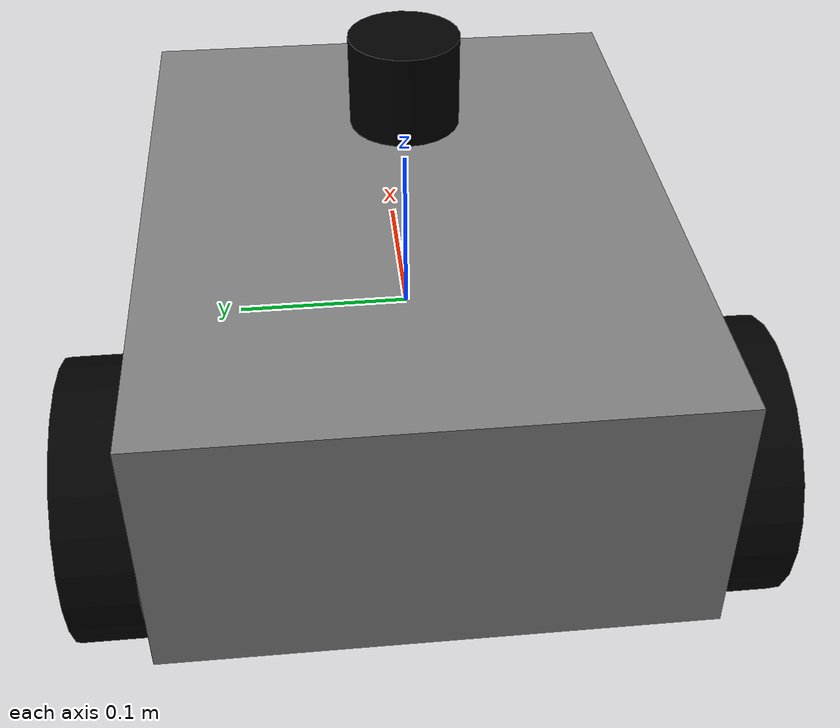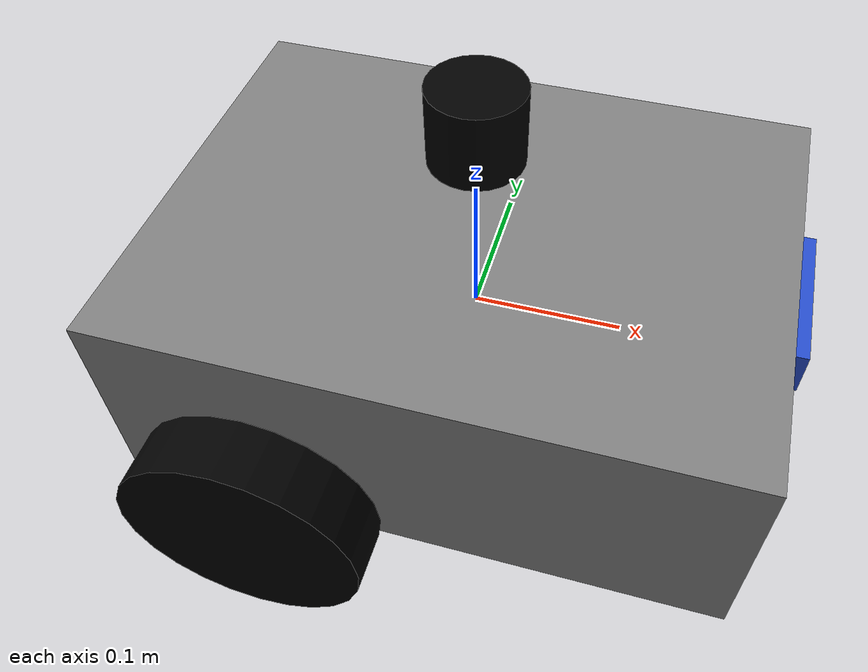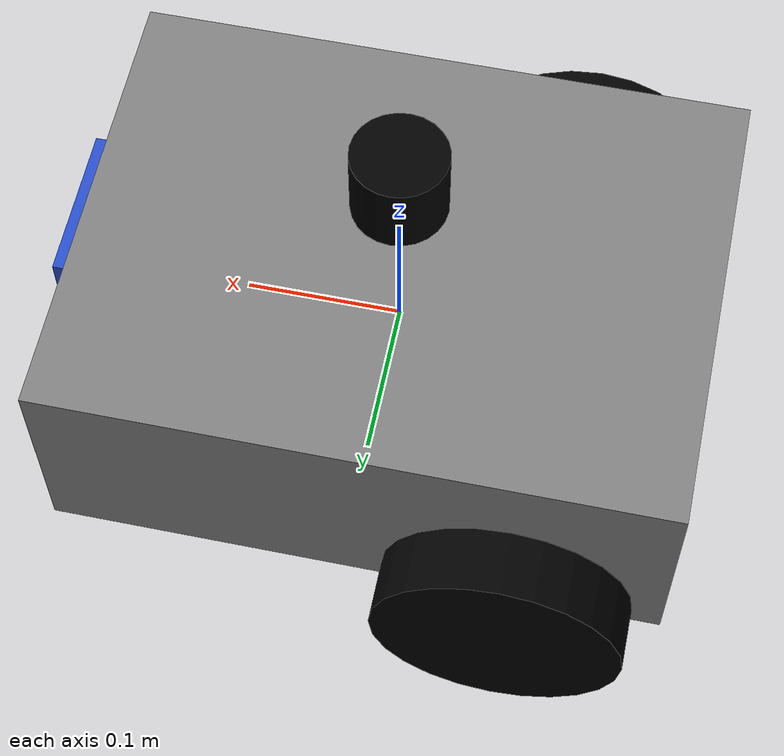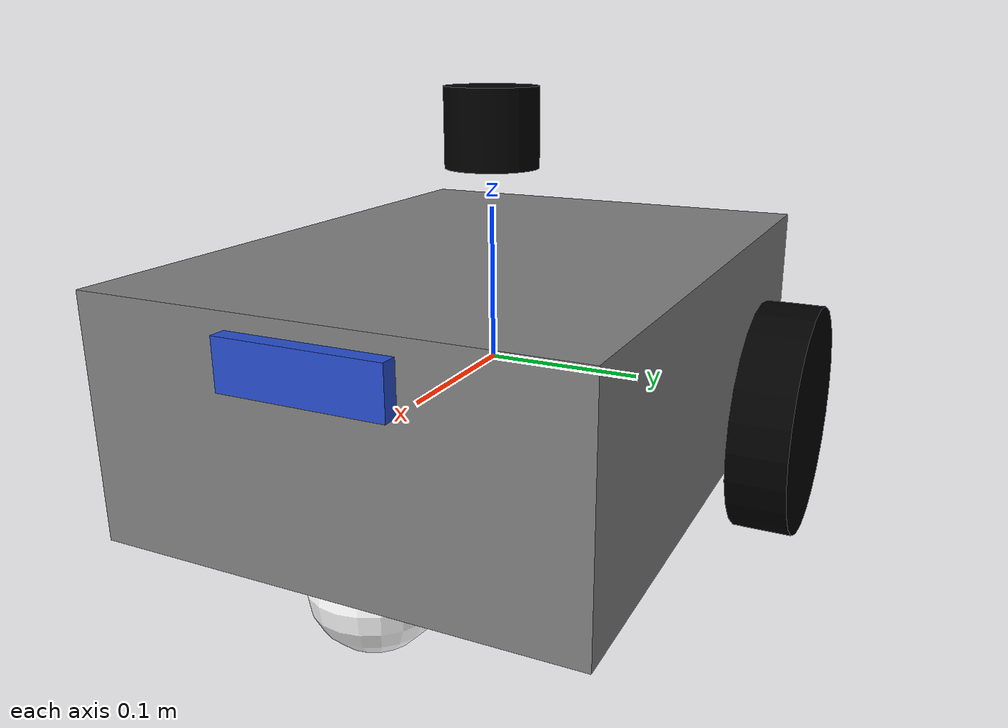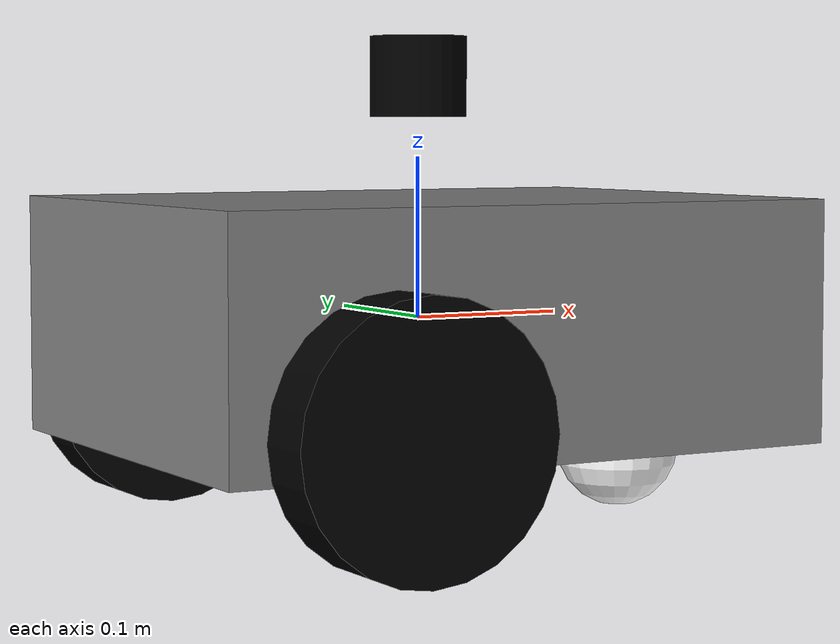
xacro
<?xml version="1.0"?>
<robot name="sensor_car" xmlns:xacro="http://www.ros.org/wiki/xacro">

  <link name="base_link">
    <visual>
      <geometry><box size="0.4 0.3 0.15"/></geometry>
      <material name="gray"><color rgba="0.5 0.5 0.5 1.0"/></material>
    </visual>
    <collision>
      <geometry><box size="0.4 0.3 0.15"/></geometry>
    </collision>
    <inertial>
      <mass value="5.0"/>
      <origin xyz="0 0 0" rpy="0 0 0"/>
      <inertia ixx="0.047" ixy="0.0" ixz="0.0" iyy="0.076" iyz="0.0" izz="0.104"/>
    </inertial>
  </link>

  <joint name="left_wheel_joint" type="continuous">
    <parent link="base_link"/>
    <child link="left_wheel"/>
    <origin xyz="-0.1 0.175 -0.05" rpy="-1.5708 0 0"/> <axis xyz="0 0 1"/>
  </joint>
  <link name="left_wheel">
    <visual>
      <geometry><cylinder radius="0.08" length="0.04"/></geometry>
      <material name="black"><color rgba="0 0 0 1.0"/></material>
    </visual>
    <collision>
      <geometry><cylinder radius="0.08" length="0.04"/></geometry>
    </collision>
    <inertial>
      <mass value="0.5"/>
      <inertia ixx="0.001" ixy="0.0" ixz="0.0" iyy="0.001" iyz="0.0" izz="0.001"/>
    </inertial>
  </link>

  <joint name="right_wheel_joint" type="continuous">
    <parent link="base_link"/>
    <child link="right_wheel"/>
    <origin xyz="-0.1 -0.175 -0.05" rpy="-1.5708 0 0"/>
    <axis xyz="0 0 1"/>
  </joint>
  <link name="right_wheel">
    <visual>
      <geometry><cylinder radius="0.08" length="0.04"/></geometry>
      <material name="black"><color rgba="0 0 0 1.0"/></material>
    </visual>
    <collision>
      <geometry><cylinder radius="0.08" length="0.04"/></geometry>
    </collision>
    <inertial>
      <mass value="0.5"/>
      <inertia ixx="0.001" ixy="0.0" ixz="0.0" iyy="0.001" iyz="0.0" izz="0.001"/>
    </inertial>
  </link>

  <joint name="caster_joint" type="fixed">
    <parent link="base_link"/>
    <child link="caster_wheel"/>
    <origin xyz="0.15 0 -0.09" rpy="0 0 0"/>
  </joint>
  <link name="caster_wheel">
    <visual>
      <geometry><sphere radius="0.04"/></geometry>
      <material name="white"><color rgba="1 1 1 1.0"/></material>
    </visual>
    <collision>
      <geometry><sphere radius="0.04"/></geometry>
    </collision>
    <inertial>
      <mass value="0.2"/>
      <inertia ixx="0.0001" ixy="0.0" ixz="0.0" iyy="0.0001" iyz="0.0" izz="0.0001"/>
    </inertial>
  </link>
  <gazebo reference="caster_wheel">
    <mu1>0.0</mu1> <mu2>0.0</mu2>
  </gazebo>

  <joint name="mid360_joint" type="fixed">
    <parent link="base_link"/>
    <child link="mid360_link"/>
    <origin xyz="0.0 0 0.15" rpy="0 0 0"/>
  </joint>
  <link name="mid360_link">
    <visual>
      <geometry><cylinder radius="0.03" length="0.05"/></geometry>
      <material name="black"/>
    </visual>
    <collision>
      <geometry><cylinder radius="0.03" length="0.05"/></geometry>
    </collision>
    <inertial>
      <mass value="0.2"/>
      <inertia ixx="0.0001" ixy="0.0" ixz="0.0" iyy="0.0001" iyz="0.0" izz="0.0001"/>
    </inertial>
  </link>
  <gazebo reference="mid360_link">
    <sensor type="ray" name="livox_mid360">
      <pose>0 0 0 0 0 0</pose>
      <visualize>false</visualize>
      <update_rate>10.0</update_rate>
      <plugin name="gazebo_ros_laser" filename="liblivox_laser_simulation.so">
        <ros><namespace>/</namespace><remapping>~/out:=/livox/lidar</remapping></ros>
        <ray>
          <scan>
            <horizontal><samples>1000</samples><resolution>1</resolution><min_angle>-3.14159</min_angle><max_angle>3.14159</max_angle></horizontal>
            <vertical><samples>36</samples><resolution>1</resolution><min_angle>-0.12217</min_angle><max_angle>0.92502</max_angle></vertical>
          </scan>
          <range><min>0.1</min><max>40.0</max><resolution>0.01</resolution></range>
        </ray>
        <visualize>false</visualize><samples>10000</samples><downsample>1</downsample>
        <csv_file_name>package://livox_laser_simulation_ros2/scan_mode/mid360.csv</csv_file_name>
        <topic>/livox/lidar</topic>
      </plugin>
    </sensor>
  </gazebo>

  <joint name="orbbec_camera_joint" type="fixed">
    <parent link="base_link"/>
    <child link="orbbec_camera_link"/>
    <origin xyz="0.2 0 0.05" rpy="0 0 0"/>
  </joint>
  <link name="orbbec_camera_link">
    <visual>
      <geometry><box size="0.02 0.1 0.03"/></geometry>
      <material name="blue"/>
    </visual>
    <collision>
      <geometry><box size="0.02 0.1 0.03"/></geometry>
    </collision>
    <inertial>
      <mass value="0.1"/>
      <inertia ixx="0.0001" ixy="0.0" ixz="0.0" iyy="0.0001" iyz="0.0" izz="0.0001"/>
    </inertial>
  </link>
  <joint name="orbbec_camera_optical_joint" type="fixed">
    <parent link="orbbec_camera_link"/>
    <child link="orbbec_camera_optical_link"/>
    <origin xyz="0 0 0" rpy="-1.5708 0 -1.5708"/>
  </joint>
  <link name="orbbec_camera_optical_link"/>

  <gazebo reference="orbbec_camera_link">
    <sensor type="depth" name="orbbec_depth_camera">
      <always_on>true</always_on><update_rate>15.0</update_rate>
      <camera>
        <horizontal_fov>1.50098</horizontal_fov>
        <image><width>640</width><height>480</height><format>R8G8B8</format></image>
        <clip><near>0.1</near><far>8.0</far></clip>
      </camera>
      <plugin name="orbbec_camera_controller" filename="libgazebo_ros_camera.so">
        <ros>
          <namespace>camera</namespace>
          <remapping>custom_camera/image_raw:=color/image_raw</remapping>
          <remapping>custom_camera/image_depth:=depth/image_raw</remapping>
          <remapping>custom_camera/camera_info:=color/camera_info</remapping>
          <remapping>custom_camera/camera_info_depth:=depth/camera_info</remapping>
          <remapping>custom_camera/points:=depth/points</remapping>
        </ros>
        <camera_name>front_camera</camera_name>
        <frame_name>orbbec_camera_optical_link</frame_name>
        <hack_baseline>0.07</hack_baseline><min_depth>0.1</min_depth><max_depth>8.0</max_depth>
      </plugin>
    </sensor>
  </gazebo>

  <gazebo>
    <plugin name="differential_drive_controller" filename="libgazebo_ros_diff_drive.so">
      <update_rate>30</update_rate>
      <left_joint>left_wheel_joint</left_joint>
      <right_joint>right_wheel_joint</right_joint>
      <wheel_separation>0.35</wheel_separation>
      <wheel_diameter>0.16</wheel_diameter>
      <max_wheel_torque>20</max_wheel_torque>
      <max_wheel_acceleration>1.0</max_wheel_acceleration>
      <command_topic>cmd_vel</command_topic>
      <publish_odom>true</publish_odom>
      <publish_odom_tf>true</publish_odom_tf>
      <publish_wheel_tf>false</publish_wheel_tf>
      <odometry_topic>odom</odometry_topic>
      <odometry_frame>odom</odometry_frame>
      <robot_base_frame>base_link</robot_base_frame>
    </plugin>
  </gazebo>

</robot>
